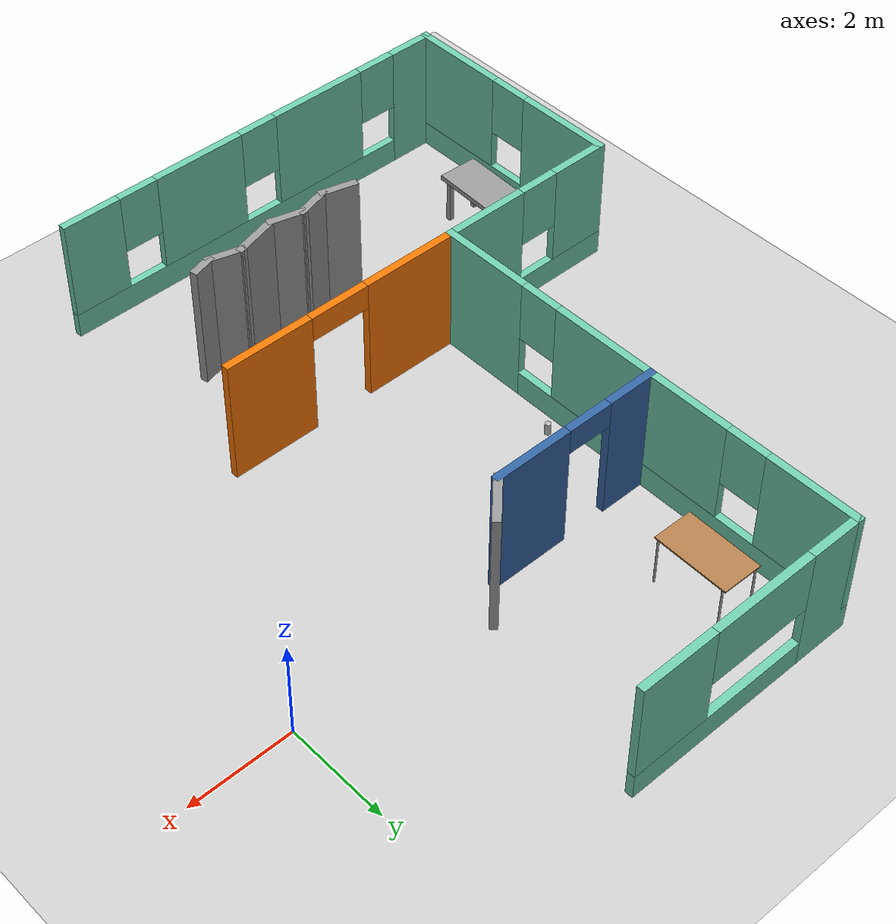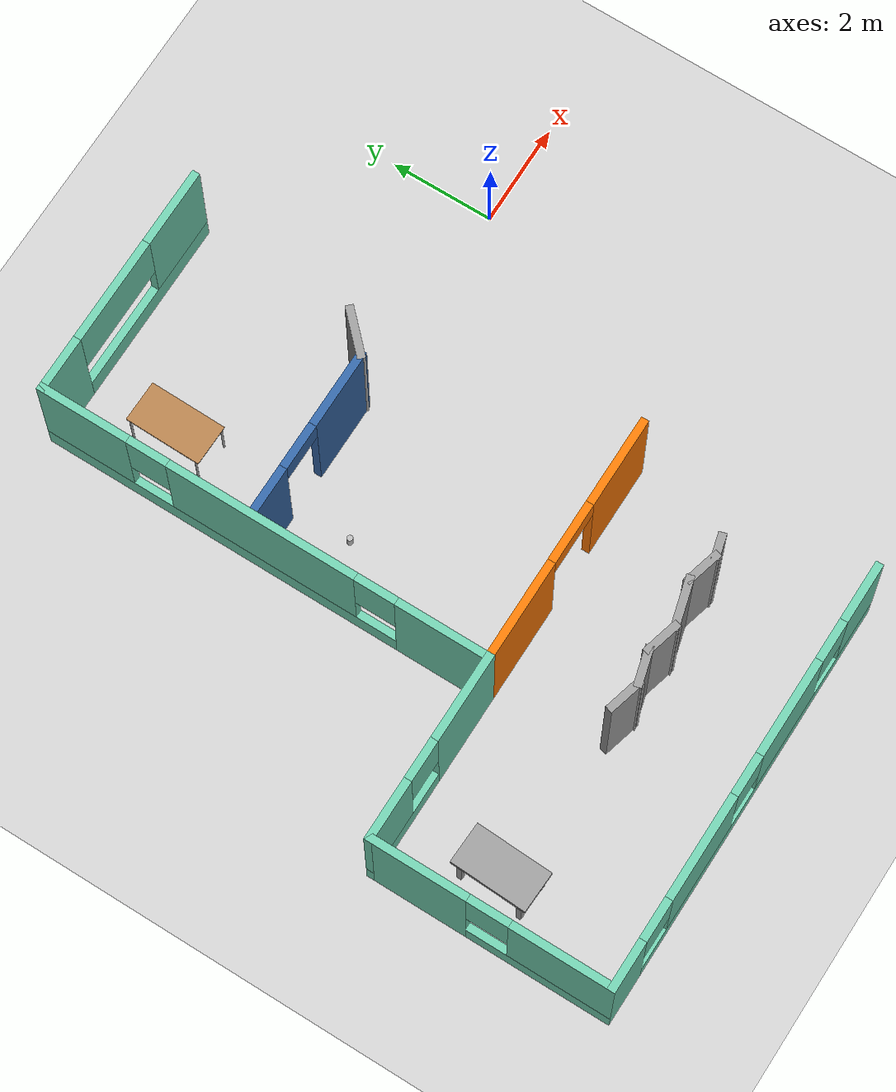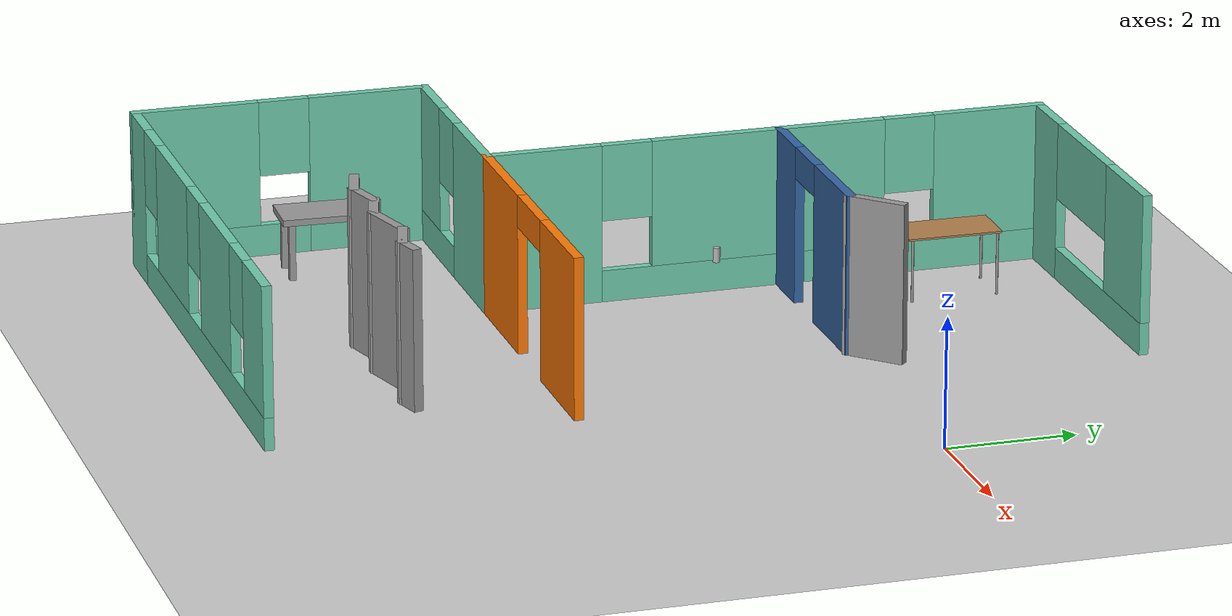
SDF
<sdf version="1.6">
 <world name="default">
  <model name="ground_plane">
   <static>1</static>
   <link name="link">
    <collision name="collision">
     <geometry><plane><normal>0 0 1</normal><size>100 100</size></plane></geometry>
     <surface>
      <contact><collide_bitmask>65535</collide_bitmask></contact>
      <friction><ode><mu>100</mu><mu2>50</mu2></ode></friction>
     </surface>
    </collision>
    <visual name="visual">
     <cast_shadows>0</cast_shadows>
     <geometry><plane><normal>0 0 1</normal><size>100 100</size></plane></geometry>
     <material>
      <script><uri>file://media/materials/scripts/gazebo.material</uri><name>Gazebo/Grey</name></script>
     </material>
    </visual>
   </link>
  </model>
  <model name="model">
   <pose>-1.34408 -2.0758 0 0 -0 0</pose>
   <link name="Wall_16">
    <pose>-3.78776 -2.63039 0 0 -0 3.14159</pose>
    <visual name="Wall_16_Visual_0">
     <pose>-1.61733 0 1.25 0 -0 0</pose>
     <geometry><box><size>1.76534 0.15 2.5</size></box></geometry>
     <material>
      <script><uri>file://media/materials/scripts/gazebo.material</uri><name>Gazebo/Grey</name></script>
      <ambient>0.996078 0.47451 0.0196078 1</ambient>
     </material>
     <meta><layer>0</layer></meta>
    </visual>
    <collision name="Wall_16_Collision_0">
     <geometry><box><size>1.76534 0.15 2.5</size></box></geometry>
     <pose>-1.61733 0 1.25 0 -0 0</pose>
    </collision>
    <visual name="Wall_16_Visual_1">
     <pose>1.48562 0 1.25 0 -0 0</pose>
     <geometry><box><size>2.02876 0.15 2.5</size></box></geometry>
     <material>
      <script><uri>file://media/materials/scripts/gazebo.material</uri><name>Gazebo/Grey</name></script>
      <ambient>0.996078 0.47451 0.0196078 1</ambient>
     </material>
     <meta><layer>0</layer></meta>
    </visual>
    <collision name="Wall_16_Collision_1">
     <geometry><box><size>2.02876 0.15 2.5</size></box></geometry>
     <pose>1.48562 0 1.25 0 -0 0</pose>
    </collision>
    <visual name="Wall_16_Visual_2">
     <pose>-0.131714 0 2.25 0 -0 0</pose>
     <geometry><box><size>1.2059 0.15 0.5</size></box></geometry>
     <material>
      <script><uri>file://media/materials/scripts/gazebo.material</uri><name>Gazebo/Grey</name></script>
      <ambient>0.996078 0.47451 0.0196078 1</ambient>
     </material>
     <meta><layer>0</layer></meta>
    </visual>
    <collision name="Wall_16_Collision_2">
     <geometry><box><size>1.2059 0.15 0.5</size></box></geometry>
     <pose>-0.131714 0 2.25 0 -0 0</pose>
    </collision>
   </link>
   <link name="Wall_17">
    <pose>-6.21276 1.79461 0 0 -0 1.5708</pose>
    <visual name="Wall_17_Visual_0">
     <pose>-3.56709 0 1.25 0 -0 0</pose>
     <geometry><box><size>1.86582 0.15 2.5</size></box></geometry>
     <material>
      <script><uri>file://media/materials/scripts/gazebo.material</uri><name>Gazebo/Grey</name></script>
      <ambient>0.435294 0.796078 0.67451 1</ambient>
     </material>
     <meta><layer>0</layer></meta>
    </visual>
    <collision name="Wall_17_Collision_0">
     <geometry><box><size>1.86582 0.15 2.5</size></box></geometry>
     <pose>-3.56709 0 1.25 0 -0 0</pose>
    </collision>
    <visual name="Wall_17_Visual_1">
     <pose>0.932909 0 0.25 0 -0 0</pose>
     <geometry><box><size>7.13418 0.15 0.5</size></box></geometry>
     <material>
      <script><uri>file://media/materials/scripts/gazebo.material</uri><name>Gazebo/Grey</name></script>
      <ambient>0.435294 0.796078 0.67451 1</ambient>
     </material>
     <meta><layer>0</layer></meta>
    </visual>
    <collision name="Wall_17_Collision_1">
     <geometry><box><size>7.13418 0.15 0.5</size></box></geometry>
     <pose>0.932909 0 0.25 0 -0 0</pose>
    </collision>
    <visual name="Wall_17_Visual_2">
     <pose>0.029496 0 1.5 0 -0 0</pose>
     <geometry><box><size>3.72735 0.15 2</size></box></geometry>
     <material>
      <script><uri>file://media/materials/scripts/gazebo.material</uri><name>Gazebo/Grey</name></script>
      <ambient>0.435294 0.796078 0.67451 1</ambient>
     </material>
     <meta><layer>0</layer></meta>
    </visual>
    <collision name="Wall_17_Collision_2">
     <geometry><box><size>3.72735 0.15 2</size></box></geometry>
     <pose>0.029496 0 1.5 0 -0 0</pose>
    </collision>
    <visual name="Wall_17_Visual_3">
     <pose>3.59659 0 1.5 0 -0 0</pose>
     <geometry><box><size>1.80683 0.15 2</size></box></geometry>
     <material>
      <script><uri>file://media/materials/scripts/gazebo.material</uri><name>Gazebo/Grey</name></script>
      <ambient>0.435294 0.796078 0.67451 1</ambient>
     </material>
     <meta><layer>0</layer></meta>
    </visual>
    <collision name="Wall_17_Collision_3">
     <geometry><box><size>1.80683 0.15 2</size></box></geometry>
     <pose>3.59659 0 1.5 0 -0 0</pose>
    </collision>
    <visual name="Wall_17_Visual_4">
     <pose>-2.23418 0 1.9 0 -0 0</pose>
     <geometry><box><size>0.8 0.15 1.2</size></box></geometry>
     <material>
      <script><uri>file://media/materials/scripts/gazebo.material</uri><name>Gazebo/Grey</name></script>
      <ambient>0.435294 0.796078 0.67451 1</ambient>
     </material>
     <meta><layer>0</layer></meta>
    </visual>
    <collision name="Wall_17_Collision_4">
     <geometry><box><size>0.8 0.15 1.2</size></box></geometry>
     <pose>-2.23418 0 1.9 0 -0 0</pose>
    </collision>
    <visual name="Wall_17_Visual_5">
     <pose>2.29317 0 1.9 0 -0 0</pose>
     <geometry><box><size>0.8 0.15 1.2</size></box></geometry>
     <material>
      <script><uri>file://media/materials/scripts/gazebo.material</uri><name>Gazebo/Grey</name></script>
      <ambient>0.435294 0.796078 0.67451 1</ambient>
     </material>
     <meta><layer>0</layer></meta>
    </visual>
    <collision name="Wall_17_Collision_5">
     <geometry><box><size>0.8 0.15 1.2</size></box></geometry>
     <pose>2.29317 0 1.9 0 -0 0</pose>
    </collision>
   </link>
   <link name="Wall_21">
    <pose>-4.53435 2.02213 0 0 -0 0</pose>
    <visual name="Wall_21_Visual_0">
     <pose>-1.22897 0 1.25 0 -0 0</pose>
     <geometry><box><size>1.04206 0.15 2.5</size></box></geometry>
     <material>
      <script><uri>file://media/materials/scripts/gazebo.material</uri><name>Gazebo/Grey</name></script>
      <ambient>0.203922 0.396078 0.643137 1</ambient>
     </material>
     <meta><layer>0</layer></meta>
    </visual>
    <collision name="Wall_21_Collision_0">
     <geometry><box><size>1.04206 0.15 2.5</size></box></geometry>
     <pose>-1.22897 0 1.25 0 -0 0</pose>
    </collision>
    <visual name="Wall_21_Visual_1">
     <pose>0.971028 0 1.25 0 -0 0</pose>
     <geometry><box><size>1.55794 0.15 2.5</size></box></geometry>
     <material>
      <script><uri>file://media/materials/scripts/gazebo.material</uri><name>Gazebo/Grey</name></script>
      <ambient>0.203922 0.396078 0.643137 1</ambient>
     </material>
     <meta><layer>0</layer></meta>
    </visual>
    <collision name="Wall_21_Collision_1">
     <geometry><box><size>1.55794 0.15 2.5</size></box></geometry>
     <pose>0.971028 0 1.25 0 -0 0</pose>
    </collision>
    <visual name="Wall_21_Visual_2">
     <pose>-0.257943 0 2.25 0 -0 0</pose>
     <geometry><box><size>0.9 0.15 0.5</size></box></geometry>
     <material>
      <script><uri>file://media/materials/scripts/gazebo.material</uri><name>Gazebo/Grey</name></script>
      <ambient>0.203922 0.396078 0.643137 1</ambient>
     </material>
     <meta><layer>0</layer></meta>
    </visual>
    <collision name="Wall_21_Collision_2">
     <geometry><box><size>0.9 0.15 0.5</size></box></geometry>
     <pose>-0.257943 0 2.25 0 -0 0</pose>
    </collision>
   </link>
   <link name="Wall_47">
    <pose>-8.01276 -2.63039 0 0 -0 3.14159</pose>
    <visual name="Wall_47_Visual_0">
     <pose>-1.00859 0 1.25 0 -0 0</pose>
     <geometry><box><size>1.73283 0.15 2.5</size></box></geometry>
     <material>
      <script><uri>file://media/materials/scripts/gazebo.material</uri><name>Gazebo/Grey</name></script>
      <ambient>0.435294 0.796078 0.67451 1</ambient>
     </material>
     <meta><layer>0</layer></meta>
    </visual>
    <collision name="Wall_47_Collision_0">
     <geometry><box><size>1.73283 0.15 2.5</size></box></geometry>
     <pose>-1.00859 0 1.25 0 -0 0</pose>
    </collision>
    <visual name="Wall_47_Visual_1">
     <pose>0.866413 0 0.25 0 -0 0</pose>
     <geometry><box><size>2.01717 0.15 0.5</size></box></geometry>
     <material>
      <script><uri>file://media/materials/scripts/gazebo.material</uri><name>Gazebo/Grey</name></script>
      <ambient>0.435294 0.796078 0.67451 1</ambient>
     </material>
     <meta><layer>0</layer></meta>
    </visual>
    <collision name="Wall_47_Collision_1">
     <geometry><box><size>2.01717 0.15 0.5</size></box></geometry>
     <pose>0.866413 0 0.25 0 -0 0</pose>
    </collision>
    <visual name="Wall_47_Visual_2">
     <pose>1.26641 0 1.5 0 -0 0</pose>
     <geometry><box><size>1.21717 0.15 2</size></box></geometry>
     <material>
      <script><uri>file://media/materials/scripts/gazebo.material</uri><name>Gazebo/Grey</name></script>
      <ambient>0.435294 0.796078 0.67451 1</ambient>
     </material>
     <meta><layer>0</layer></meta>
    </visual>
    <collision name="Wall_47_Collision_2">
     <geometry><box><size>1.21717 0.15 2</size></box></geometry>
     <pose>1.26641 0 1.5 0 -0 0</pose>
    </collision>
    <visual name="Wall_47_Visual_3">
     <pose>0.257826 0 1.9 0 -0 0</pose>
     <geometry><box><size>0.8 0.15 1.2</size></box></geometry>
     <material>
      <script><uri>file://media/materials/scripts/gazebo.material</uri><name>Gazebo/Grey</name></script>
      <ambient>0.435294 0.796078 0.67451 1</ambient>
     </material>
     <meta><layer>0</layer></meta>
    </visual>
    <collision name="Wall_47_Collision_3">
     <geometry><box><size>0.8 0.15 1.2</size></box></geometry>
     <pose>0.257826 0 1.9 0 -0 0</pose>
    </collision>
   </link>
   <link name="Wall_48">
    <pose>-9.81276 -4.93039 0 0 -0 -1.5708</pose>
    <visual name="Wall_48_Visual_0">
     <pose>-1.40172 0 1.25 0 -0 0</pose>
     <geometry><box><size>1.94656 0.15 2.5</size></box></geometry>
     <material>
      <script><uri>file://media/materials/scripts/gazebo.material</uri><name>Gazebo/Grey</name></script>
      <ambient>0.435294 0.796078 0.67451 1</ambient>
     </material>
     <meta><layer>0</layer></meta>
    </visual>
    <collision name="Wall_48_Collision_0">
     <geometry><box><size>1.94656 0.15 2.5</size></box></geometry>
     <pose>-1.40172 0 1.25 0 -0 0</pose>
    </collision>
    <visual name="Wall_48_Visual_1">
     <pose>0.973278 0 0.25 0 -0 0</pose>
     <geometry><box><size>2.80344 0.15 0.5</size></box></geometry>
     <material>
      <script><uri>file://media/materials/scripts/gazebo.material</uri><name>Gazebo/Grey</name></script>
      <ambient>0.435294 0.796078 0.67451 1</ambient>
     </material>
     <meta><layer>0</layer></meta>
    </visual>
    <collision name="Wall_48_Collision_1">
     <geometry><box><size>2.80344 0.15 0.5</size></box></geometry>
     <pose>0.973278 0 0.25 0 -0 0</pose>
    </collision>
    <visual name="Wall_48_Visual_2">
     <pose>1.37328 0 1.5 0 -0 0</pose>
     <geometry><box><size>2.00344 0.15 2</size></box></geometry>
     <material>
      <script><uri>file://media/materials/scripts/gazebo.material</uri><name>Gazebo/Grey</name></script>
      <ambient>0.435294 0.796078 0.67451 1</ambient>
     </material>
     <meta><layer>0</layer></meta>
    </visual>
    <collision name="Wall_48_Collision_2">
     <geometry><box><size>2.00344 0.15 2</size></box></geometry>
     <pose>1.37328 0 1.5 0 -0 0</pose>
    </collision>
    <visual name="Wall_48_Visual_3">
     <pose>-0.028444 0 1.9 0 -0 0</pose>
     <geometry><box><size>0.8 0.15 1.2</size></box></geometry>
     <material>
      <script><uri>file://media/materials/scripts/gazebo.material</uri><name>Gazebo/Grey</name></script>
      <ambient>0.435294 0.796078 0.67451 1</ambient>
     </material>
     <meta><layer>0</layer></meta>
    </visual>
    <collision name="Wall_48_Collision_3">
     <geometry><box><size>0.8 0.15 1.2</size></box></geometry>
     <pose>-0.028444 0 1.9 0 -0 0</pose>
    </collision>
   </link>
   <link name="Wall_53">
    <pose>-5.63776 -7.23039 0 0 -0 0</pose>
    <visual name="Wall_53_Visual_0">
     <pose>-3.75772 0 1.25 0 -0 0</pose>
     <geometry><box><size>0.984555 0.15 2.5</size></box></geometry>
     <material>
      <script><uri>file://media/materials/scripts/gazebo.material</uri><name>Gazebo/Grey</name></script>
      <ambient>0.435294 0.796078 0.67451 1</ambient>
     </material>
     <meta><layer>0</layer></meta>
    </visual>
    <collision name="Wall_53_Collision_0">
     <geometry><box><size>0.984555 0.15 2.5</size></box></geometry>
     <pose>-3.75772 0 1.25 0 -0 0</pose>
    </collision>
    <visual name="Wall_53_Visual_1">
     <pose>0.492277 0 0.25 0 -0 0</pose>
     <geometry><box><size>7.51544 0.15 0.5</size></box></geometry>
     <material>
      <script><uri>file://media/materials/scripts/gazebo.material</uri><name>Gazebo/Grey</name></script>
      <ambient>0.435294 0.796078 0.67451 1</ambient>
     </material>
     <meta><layer>0</layer></meta>
    </visual>
    <collision name="Wall_53_Collision_1">
     <geometry><box><size>7.51544 0.15 0.5</size></box></geometry>
     <pose>0.492277 0 0.25 0 -0 0</pose>
    </collision>
    <visual name="Wall_53_Visual_2">
     <pose>-1.44647 0 1.5 0 -0 0</pose>
     <geometry><box><size>2.03796 0.15 2</size></box></geometry>
     <material>
      <script><uri>file://media/materials/scripts/gazebo.material</uri><name>Gazebo/Grey</name></script>
      <ambient>0.435294 0.796078 0.67451 1</ambient>
     </material>
     <meta><layer>0</layer></meta>
    </visual>
    <collision name="Wall_53_Collision_2">
     <geometry><box><size>2.03796 0.15 2</size></box></geometry>
     <pose>-1.44647 0 1.5 0 -0 0</pose>
    </collision>
    <visual name="Wall_53_Visual_3">
     <pose>1.32171 0 1.5 0 -0 0</pose>
     <geometry><box><size>1.89839 0.15 2</size></box></geometry>
     <material>
      <script><uri>file://media/materials/scripts/gazebo.material</uri><name>Gazebo/Grey</name></script>
      <ambient>0.435294 0.796078 0.67451 1</ambient>
     </material>
     <meta><layer>0</layer></meta>
    </visual>
    <collision name="Wall_53_Collision_3">
     <geometry><box><size>1.89839 0.15 2</size></box></geometry>
     <pose>1.32171 0 1.5 0 -0 0</pose>
    </collision>
    <visual name="Wall_53_Visual_4">
     <pose>3.66045 0 1.5 0 -0 0</pose>
     <geometry><box><size>1.1791 0.15 2</size></box></geometry>
     <material>
      <script><uri>file://media/materials/scripts/gazebo.material</uri><name>Gazebo/Grey</name></script>
      <ambient>0.435294 0.796078 0.67451 1</ambient>
     </material>
     <meta><layer>0</layer></meta>
    </visual>
    <collision name="Wall_53_Collision_4">
     <geometry><box><size>1.1791 0.15 2</size></box></geometry>
     <pose>3.66045 0 1.5 0 -0 0</pose>
    </collision>
    <visual name="Wall_53_Visual_5">
     <pose>-2.86544 0 1.9 0 -0 0</pose>
     <geometry><box><size>0.8 0.15 1.2</size></box></geometry>
     <material>
      <script><uri>file://media/materials/scripts/gazebo.material</uri><name>Gazebo/Grey</name></script>
      <ambient>0.435294 0.796078 0.67451 1</ambient>
     </material>
     <meta><layer>0</layer></meta>
    </visual>
    <collision name="Wall_53_Collision_5">
     <geometry><box><size>0.8 0.15 1.2</size></box></geometry>
     <pose>-2.86544 0 1.9 0 -0 0</pose>
    </collision>
    <visual name="Wall_53_Visual_6">
     <pose>-0.027486 0 1.9 0 -0 0</pose>
     <geometry><box><size>0.8 0.15 1.2</size></box></geometry>
     <material>
      <script><uri>file://media/materials/scripts/gazebo.material</uri><name>Gazebo/Grey</name></script>
      <ambient>0.435294 0.796078 0.67451 1</ambient>
     </material>
     <meta><layer>0</layer></meta>
    </visual>
    <collision name="Wall_53_Collision_6">
     <geometry><box><size>0.8 0.15 1.2</size></box></geometry>
     <pose>-0.027486 0 1.9 0 -0 0</pose>
    </collision>
    <visual name="Wall_53_Visual_7">
     <pose>2.6709 0 1.9 0 -0 0</pose>
     <geometry><box><size>0.8 0.15 1.2</size></box></geometry>
     <material>
      <script><uri>file://media/materials/scripts/gazebo.material</uri><name>Gazebo/Grey</name></script>
      <ambient>0.435294 0.796078 0.67451 1</ambient>
     </material>
     <meta><layer>0</layer></meta>
    </visual>
    <collision name="Wall_53_Collision_7">
     <geometry><box><size>0.8 0.15 1.2</size></box></geometry>
     <pose>2.6709 0 1.9 0 -0 0</pose>
    </collision>
   </link>
   <link name="Wall_6">
    <pose>-3.91276 6.21961 0 0 -0 0</pose>
    <visual name="Wall_6_Visual_0">
     <pose>-1.81197 0 1.25 0 -0 0</pose>
     <geometry><box><size>1.12606 0.15 2.5</size></box></geometry>
     <material>
      <script><uri>file://media/materials/scripts/gazebo.material</uri><name>Gazebo/Grey</name></script>
      <ambient>0.435294 0.796078 0.67451 1</ambient>
     </material>
     <meta><layer>0</layer></meta>
    </visual>
    <collision name="Wall_6_Collision_0">
     <geometry><box><size>1.12606 0.15 2.5</size></box></geometry>
     <pose>-1.81197 0 1.25 0 -0 0</pose>
    </collision>
    <visual name="Wall_6_Visual_1">
     <pose>0.563031 0 0.25 0 -0 0</pose>
     <geometry><box><size>3.62394 0.15 0.5</size></box></geometry>
     <material>
      <script><uri>file://media/materials/scripts/gazebo.material</uri><name>Gazebo/Grey</name></script>
      <ambient>0.435294 0.796078 0.67451 1</ambient>
     </material>
     <meta><layer>0</layer></meta>
    </visual>
    <collision name="Wall_6_Collision_1">
     <geometry><box><size>3.62394 0.15 0.5</size></box></geometry>
     <pose>0.563031 0 0.25 0 -0 0</pose>
    </collision>
    <visual name="Wall_6_Visual_2">
     <pose>1.60543 0 1.5 0 -0 0</pose>
     <geometry><box><size>1.53915 0.15 2</size></box></geometry>
     <material>
      <script><uri>file://media/materials/scripts/gazebo.material</uri><name>Gazebo/Grey</name></script>
      <ambient>0.435294 0.796078 0.67451 1</ambient>
     </material>
     <meta><layer>0</layer></meta>
    </visual>
    <collision name="Wall_6_Collision_2">
     <geometry><box><size>1.53915 0.15 2</size></box></geometry>
     <pose>1.60543 0 1.5 0 -0 0</pose>
    </collision>
    <visual name="Wall_6_Visual_3">
     <pose>-0.206543 0 1.9 0 -0 0</pose>
     <geometry><box><size>2.08479 0.15 1.2</size></box></geometry>
     <material>
      <script><uri>file://media/materials/scripts/gazebo.material</uri><name>Gazebo/Grey</name></script>
      <ambient>0.435294 0.796078 0.67451 1</ambient>
     </material>
     <meta><layer>0</layer></meta>
    </visual>
    <collision name="Wall_6_Collision_3">
     <geometry><box><size>2.08479 0.15 1.2</size></box></geometry>
     <pose>-0.206543 0 1.9 0 -0 0</pose>
    </collision>
   </link>
   <link name="Wall_65">
    <collision name="Wall_65_Collision">
     <geometry><box><size>1 0.15 2.5</size></box></geometry>
     <pose>0 0 1.25 0 -0 0</pose>
    </collision>
    <visual name="Wall_65_Visual">
     <pose>0 0 1.25 0 -0 0</pose>
     <geometry><box><size>1 0.15 2.5</size></box></geometry>
     <material>
      <script><uri>file://media/materials/scripts/gazebo.material</uri><name>Gazebo/Grey</name></script>
      <ambient>0 0 0 1</ambient>
     </material>
     <meta><layer>0</layer></meta>
    </visual>
    <pose>-2.55882 2.32265 0 0 -0 0.785398</pose>
   </link>
   <link name="Wall_77">
    <collision name="Wall_77_Collision">
     <geometry><box><size>0.5 0.15 2.5</size></box></geometry>
     <pose>0 0 1.25 0 -0 0</pose>
    </collision>
    <visual name="Wall_77_Visual">
     <pose>0 0 1.25 0 -0 0</pose>
     <geometry><box><size>0.5 0.15 2.5</size></box></geometry>
     <material>
      <script><uri>file://media/materials/scripts/gazebo.material</uri><name>Gazebo/Grey</name></script>
      <ambient>0 0 0 1</ambient>
     </material>
     <meta><layer>0</layer></meta>
    </visual>
    <pose>-2.55654 -4.82634 0 0 -0 -2.87979</pose>
   </link>
   <link name="Wall_78">
    <collision name="Wall_78_Collision">
     <geometry><box><size>0.75 0.15 2.5</size></box></geometry>
     <pose>0 0 1.25 0 -0 0</pose>
    </collision>
    <visual name="Wall_78_Visual">
     <pose>0 0 1.25 0 -0 0</pose>
     <geometry><box><size>0.75 0.15 2.5</size></box></geometry>
     <material>
      <script><uri>file://media/materials/scripts/gazebo.material</uri><name>Gazebo/Grey</name></script>
      <ambient>0 0 0 1</ambient>
     </material>
     <meta><layer>0</layer></meta>
    </visual>
    <pose>-3.01536 -4.79399 0 0 -0 2.87979</pose>
   </link>
   <link name="Wall_79">
    <collision name="Wall_79_Collision">
     <geometry><box><size>1 0.15 2.5</size></box></geometry>
     <pose>0 0 1.25 0 -0 0</pose>
    </collision>
    <visual name="Wall_79_Visual">
     <pose>0 0 1.25 0 -0 0</pose>
     <geometry><box><size>1 0.15 2.5</size></box></geometry>
     <material>
      <script><uri>file://media/materials/scripts/gazebo.material</uri><name>Gazebo/Grey</name></script>
      <ambient>0 0 0 1</ambient>
     </material>
     <meta><layer>0</layer></meta>
    </visual>
    <pose>-3.71566 -4.82634 0 0 -0 -2.87979</pose>
   </link>
   <link name="Wall_80">
    <collision name="Wall_80_Collision">
     <geometry><box><size>0.75 0.15 2.5</size></box></geometry>
     <pose>0 0 1.25 0 -0 0</pose>
    </collision>
    <visual name="Wall_80_Visual">
     <pose>0 0 1.25 0 -0 0</pose>
     <geometry><box><size>0.75 0.15 2.5</size></box></geometry>
     <material>
      <script><uri>file://media/materials/scripts/gazebo.material</uri><name>Gazebo/Grey</name></script>
      <ambient>0 0 0 1</ambient>
     </material>
     <meta><layer>0</layer></meta>
    </visual>
    <pose>-4.41595 -4.85869 0 0 -0 2.87979</pose>
   </link>
   <link name="Wall_81">
    <collision name="Wall_81_Collision">
     <geometry><box><size>0.75 0.15 2.5</size></box></geometry>
     <pose>0 0 1.25 0 -0 0</pose>
    </collision>
    <visual name="Wall_81_Visual">
     <pose>0 0 1.25 0 -0 0</pose>
     <geometry><box><size>0.75 0.15 2.5</size></box></geometry>
     <material>
      <script><uri>file://media/materials/scripts/gazebo.material</uri><name>Gazebo/Grey</name></script>
      <ambient>0 0 0 1</ambient>
     </material>
     <meta><layer>0</layer></meta>
    </visual>
    <pose>-4.99551 -4.85869 0 0 -0 -2.87979</pose>
   </link>
   <link name="Wall_82">
    <collision name="Wall_82_Collision">
     <geometry><box><size>0.75 0.15 2.5</size></box></geometry>
     <pose>0 0 1.25 0 -0 0</pose>
    </collision>
    <visual name="Wall_82_Visual">
     <pose>0 0 1.25 0 -0 0</pose>
     <geometry><box><size>0.75 0.15 2.5</size></box></geometry>
     <material>
      <script><uri>file://media/materials/scripts/gazebo.material</uri><name>Gazebo/Grey</name></script>
      <ambient>0 0 0 1</ambient>
     </material>
     <meta><layer>0</layer></meta>
    </visual>
    <pose>-5.57506 -4.85869 0 0 -0 2.87979</pose>
   </link>
   <static>1</static>
  </model>
  <model name="model_2">
   <link name="link_0">
    <inertial>
     <mass>1</mass>
     <inertia>
      <ixx>0.166667</ixx>
      <ixy>0</ixy>
      <ixz>0</ixz>
      <iyy>0.166667</iyy>
      <iyz>0</iyz>
      <izz>0.166667</izz>
     </inertia>
    </inertial>
    <pose>0.07 0.14 0.4 0 -0 0</pose>
    <visual name="visual">
     <geometry><box><size>0.8 1.5 0.1</size></box></geometry>
     <material>
      <lighting>1</lighting>
      <script><uri>file://media/materials/scripts/gazebo.material</uri><name>Gazebo/Grey</name></script>
      <shader type="pixel"><normal_map>__default__</normal_map></shader>
      <ambient>0.3 0.3 0.3 1</ambient>
      <diffuse>0.7 0.7 0.7 1</diffuse>
      <specular>0.01 0.01 0.01 1</specular>
      <emissive>0 0 0 1</emissive>
     </material>
    </visual>
    <collision name="collision">
     <geometry><box><size>0.8 1.5 0.1</size></box></geometry>
     <surface>
      <friction>
       <ode><mu>1</mu><mu2>1</mu2><fdir1>0 0 0</fdir1><slip1>0</slip1><slip2>0</slip2></ode>
       <torsional>
        <coefficient>1</coefficient>
        <patch_radius>0</patch_radius>
        <surface_radius>0</surface_radius>
        <use_patch_radius>1</use_patch_radius>
        <ode><slip>0</slip></ode>
       </torsional>
      </friction>
      <bounce><restitution_coefficient>0</restitution_coefficient><threshold>1e+06</threshold></bounce>
      <contact>
       <collide_without_contact>0</collide_without_contact>
       <collide_without_contact_bitmask>1</collide_without_contact_bitmask>
       <collide_bitmask>1</collide_bitmask>
       <ode>
        <soft_cfm>0</soft_cfm>
        <soft_erp>0.2</soft_erp>
        <kp>1e+13</kp>
        <kd>1</kd>
        <max_vel>0.01</max_vel>
        <min_depth>0</min_depth>
       </ode>
       <bullet>
        <split_impulse>1</split_impulse>
        <split_impulse_penetration_threshold>-0.01</split_impulse_penetration_threshold>
        <soft_cfm>0</soft_cfm>
        <soft_erp>0.2</soft_erp>
        <kp>1e+13</kp>
        <kd>1</kd>
       </bullet>
      </contact>
     </surface>
    </collision>
   </link>
   <link name="link_1">
    <inertial>
     <mass>1</mass>
     <inertia>
      <ixx>0.166667</ixx>
      <ixy>0</ixy>
      <ixz>0</ixz>
      <iyy>0.166667</iyy>
      <iyz>0</iyz>
      <izz>0.166667</izz>
     </inertia>
    </inertial>
    <pose>-0.23 -0.46 -0.1 0 -0 0</pose>
    <visual name="visual">
     <geometry><box><size>0.1 0.1 0.9</size></box></geometry>
     <material>
      <lighting>1</lighting>
      <script><uri>file://media/materials/scripts/gazebo.material</uri><name>Gazebo/Grey</name></script>
      <shader type="pixel"><normal_map>__default__</normal_map></shader>
      <ambient>0.3 0.3 0.3 1</ambient>
      <diffuse>0.7 0.7 0.7 1</diffuse>
      <specular>0.01 0.01 0.01 1</specular>
      <emissive>0 0 0 1</emissive>
     </material>
    </visual>
    <collision name="collision">
     <geometry><box><size>0.1 0.1 0.9</size></box></geometry>
     <surface>
      <friction>
       <ode><mu>1</mu><mu2>1</mu2><fdir1>0 0 0</fdir1><slip1>0</slip1><slip2>0</slip2></ode>
       <torsional>
        <coefficient>1</coefficient>
        <patch_radius>0</patch_radius>
        <surface_radius>0</surface_radius>
        <use_patch_radius>1</use_patch_radius>
        <ode><slip>0</slip></ode>
       </torsional>
      </friction>
      <bounce><restitution_coefficient>0</restitution_coefficient><threshold>1e+06</threshold></bounce>
      <contact>
       <collide_without_contact>0</collide_without_contact>
       <collide_without_contact_bitmask>1</collide_without_contact_bitmask>
       <collide_bitmask>1</collide_bitmask>
       <ode>
        <soft_cfm>0</soft_cfm>
        <soft_erp>0.2</soft_erp>
        <kp>1e+13</kp>
        <kd>1</kd>
        <max_vel>0.01</max_vel>
        <min_depth>0</min_depth>
       </ode>
       <bullet>
        <split_impulse>1</split_impulse>
        <split_impulse_penetration_threshold>-0.01</split_impulse_penetration_threshold>
        <soft_cfm>0</soft_cfm>
        <soft_erp>0.2</soft_erp>
        <kp>1e+13</kp>
        <kd>1</kd>
       </bullet>
      </contact>
     </surface>
    </collision>
   </link>
   <link name="link_1_clone">
    <inertial>
     <mass>1</mass>
     <inertia>
      <ixx>0.166667</ixx>
      <ixy>0</ixy>
      <ixz>0</ixz>
      <iyy>0.166667</iyy>
      <iyz>0</iyz>
      <izz>0.166667</izz>
     </inertia>
    </inertial>
    <pose>-0.23 0.74 -0.1 0 -0 0</pose>
    <visual name="visual">
     <geometry><box><size>0.1 0.1 0.9</size></box></geometry>
     <material>
      <lighting>1</lighting>
      <script><uri>file://media/materials/scripts/gazebo.material</uri><name>Gazebo/Grey</name></script>
      <shader type="pixel"><normal_map>__default__</normal_map></shader>
      <ambient>0.3 0.3 0.3 1</ambient>
      <diffuse>0.7 0.7 0.7 1</diffuse>
      <specular>0.01 0.01 0.01 1</specular>
      <emissive>0 0 0 1</emissive>
     </material>
    </visual>
    <collision name="collision">
     <geometry><box><size>0.1 0.1 0.9</size></box></geometry>
     <surface>
      <friction>
       <ode><mu>1</mu><mu2>1</mu2><fdir1>0 0 0</fdir1><slip1>0</slip1><slip2>0</slip2></ode>
       <torsional>
        <coefficient>1</coefficient>
        <patch_radius>0</patch_radius>
        <surface_radius>0</surface_radius>
        <use_patch_radius>1</use_patch_radius>
        <ode><slip>0</slip></ode>
       </torsional>
      </friction>
      <bounce><restitution_coefficient>0</restitution_coefficient><threshold>1e+06</threshold></bounce>
      <contact>
       <collide_without_contact>0</collide_without_contact>
       <collide_without_contact_bitmask>1</collide_without_contact_bitmask>
       <collide_bitmask>1</collide_bitmask>
       <ode>
        <soft_cfm>0</soft_cfm>
        <soft_erp>0.2</soft_erp>
        <kp>1e+13</kp>
        <kd>1</kd>
        <max_vel>0.01</max_vel>
        <min_depth>0</min_depth>
       </ode>
       <bullet>
        <split_impulse>1</split_impulse>
        <split_impulse_penetration_threshold>-0.01</split_impulse_penetration_threshold>
        <soft_cfm>0</soft_cfm>
        <soft_erp>0.2</soft_erp>
        <kp>1e+13</kp>
        <kd>1</kd>
       </bullet>
      </contact>
     </surface>
    </collision>
   </link>
   <link name="link_1_clone_0">
    <inertial>
     <mass>1</mass>
     <inertia>
      <ixx>0.166667</ixx>
      <ixy>0</ixy>
      <ixz>0</ixz>
      <iyy>0.166667</iyy>
      <iyz>0</iyz>
      <izz>0.166667</izz>
     </inertia>
    </inertial>
    <pose>0.37 -0.46 -0.1 0 -0 0</pose>
    <visual name="visual">
     <geometry><box><size>0.1 0.1 0.9</size></box></geometry>
     <material>
      <lighting>1</lighting>
      <script><uri>file://media/materials/scripts/gazebo.material</uri><name>Gazebo/Grey</name></script>
      <shader type="pixel"><normal_map>__default__</normal_map></shader>
      <ambient>0.3 0.3 0.3 1</ambient>
      <diffuse>0.7 0.7 0.7 1</diffuse>
      <specular>0.01 0.01 0.01 1</specular>
      <emissive>0 0 0 1</emissive>
     </material>
    </visual>
    <collision name="collision">
     <geometry><box><size>0.1 0.1 0.9</size></box></geometry>
     <surface>
      <friction>
       <ode><mu>1</mu><mu2>1</mu2><fdir1>0 0 0</fdir1><slip1>0</slip1><slip2>0</slip2></ode>
       <torsional>
        <coefficient>1</coefficient>
        <patch_radius>0</patch_radius>
        <surface_radius>0</surface_radius>
        <use_patch_radius>1</use_patch_radius>
        <ode><slip>0</slip></ode>
       </torsional>
      </friction>
      <bounce><restitution_coefficient>0</restitution_coefficient><threshold>1e+06</threshold></bounce>
      <contact>
       <collide_without_contact>0</collide_without_contact>
       <collide_without_contact_bitmask>1</collide_without_contact_bitmask>
       <collide_bitmask>1</collide_bitmask>
       <ode>
        <soft_cfm>0</soft_cfm>
        <soft_erp>0.2</soft_erp>
        <kp>1e+13</kp>
        <kd>1</kd>
        <max_vel>0.01</max_vel>
        <min_depth>0</min_depth>
       </ode>
       <bullet>
        <split_impulse>1</split_impulse>
        <split_impulse_penetration_threshold>-0.01</split_impulse_penetration_threshold>
        <soft_cfm>0</soft_cfm>
        <soft_erp>0.2</soft_erp>
        <kp>1e+13</kp>
        <kd>1</kd>
       </bullet>
      </contact>
     </surface>
    </collision>
   </link>
   <link name="link_1_clone_1">
    <inertial>
     <mass>1</mass>
     <inertia>
      <ixx>0.166667</ixx>
      <ixy>0</ixy>
      <ixz>0</ixz>
      <iyy>0.166667</iyy>
      <iyz>0</iyz>
      <izz>0.166667</izz>
     </inertia>
    </inertial>
    <pose>0.37 0.74 -0.1 0 -0 0</pose>
    <visual name="visual">
     <geometry><box><size>0.1 0.1 0.9</size></box></geometry>
     <material>
      <lighting>1</lighting>
      <script><uri>file://media/materials/scripts/gazebo.material</uri><name>Gazebo/Grey</name></script>
      <shader type="pixel"><normal_map>__default__</normal_map></shader>
      <ambient>0.3 0.3 0.3 1</ambient>
      <diffuse>0.7 0.7 0.7 1</diffuse>
      <specular>0.01 0.01 0.01 1</specular>
      <emissive>0 0 0 1</emissive>
     </material>
    </visual>
    <collision name="collision">
     <geometry><box><size>0.1 0.1 0.9</size></box></geometry>
     <surface>
      <friction>
       <ode><mu>1</mu><mu2>1</mu2><fdir1>0 0 0</fdir1><slip1>0</slip1><slip2>0</slip2></ode>
       <torsional>
        <coefficient>1</coefficient>
        <patch_radius>0</patch_radius>
        <surface_radius>0</surface_radius>
        <use_patch_radius>1</use_patch_radius>
        <ode><slip>0</slip></ode>
       </torsional>
      </friction>
      <bounce><restitution_coefficient>0</restitution_coefficient><threshold>1e+06</threshold></bounce>
      <contact>
       <collide_without_contact>0</collide_without_contact>
       <collide_without_contact_bitmask>1</collide_without_contact_bitmask>
       <collide_bitmask>1</collide_bitmask>
       <ode>
        <soft_cfm>0</soft_cfm>
        <soft_erp>0.2</soft_erp>
        <kp>1e+13</kp>
        <kd>1</kd>
        <max_vel>0.01</max_vel>
        <min_depth>0</min_depth>
       </ode>
       <bullet>
        <split_impulse>1</split_impulse>
        <split_impulse_penetration_threshold>-0.01</split_impulse_penetration_threshold>
        <soft_cfm>0</soft_cfm>
        <soft_erp>0.2</soft_erp>
        <kp>1e+13</kp>
        <kd>1</kd>
       </bullet>
      </contact>
     </surface>
    </collision>
   </link>
   <joint name="link_0_JOINT_0" type="fixed">
    <parent>link_0</parent>
    <child>link_1</child>
    <physics>
     <ode><limit><cfm>0</cfm><erp>0.2</erp></limit><suspension><cfm>0</cfm><erp>0.2</erp></suspension></ode>
    </physics>
   </joint>
   <joint name="link_0_JOINT_1" type="fixed">
    <parent>link_0</parent>
    <child>link_1_clone_1</child>
    <physics>
     <ode><limit><cfm>0</cfm><erp>0.2</erp></limit><suspension><cfm>0</cfm><erp>0.2</erp></suspension></ode>
    </physics>
   </joint>
   <joint name="link_0_JOINT_2" type="fixed">
    <parent>link_0</parent>
    <child>link_1_clone_0</child>
    <physics>
     <ode><limit><cfm>0</cfm><erp>0.2</erp></limit><suspension><cfm>0</cfm><erp>0.2</erp></suspension></ode>
    </physics>
   </joint>
   <joint name="link_0_JOINT_3" type="revolute">
    <parent>link_0</parent>
    <child>link_1_clone</child>
    <axis>
     <xyz>1 0 0</xyz>
     <use_parent_model_frame>0</use_parent_model_frame>
     <limit>
      <lower>-1.79769e+308</lower>
      <upper>1.79769e+308</upper>
      <effort>-1</effort>
      <velocity>-1</velocity>
     </limit>
     <dynamics>
      <spring_reference>0</spring_reference>
      <spring_stiffness>0</spring_stiffness>
      <damping>0</damping>
     </dynamics>
    </axis>
    <physics>
     <ode><limit><cfm>0</cfm><erp>0.2</erp></limit><suspension><cfm>0</cfm><erp>0.2</erp></suspension></ode>
    </physics>
   </joint>
   <static>0</static>
   <pose>-10.1993 -6.71211 0.55 -1e-06 -2e-06 -0.042175</pose>
  </model>
  <model name="table_clone_0">
   <static>1</static>
   <link name="link">
    <collision name="surface">
     <pose>0 0 1 0 -0 0</pose>
     <geometry><box><size>1.5 0.8 0.03</size></box></geometry>
     <surface><friction><ode><mu>0.6</mu><mu2>0.6</mu2></ode></friction></surface>
    </collision>
    <visual name="visual1">
     <pose>0 0 1 0 -0 0</pose>
     <geometry><box><size>1.5 0.8 0.03</size></box></geometry>
     <material>
      <script><uri>file://media/materials/scripts/gazebo.material</uri><name>Gazebo/Wood</name></script>
     </material>
    </visual>
    <collision name="front_left_leg">
     <pose>0.68 0.38 0.5 0 -0 0</pose>
     <geometry><cylinder><radius>0.02</radius><length>1</length></cylinder></geometry>
    </collision>
    <visual name="front_left_leg">
     <pose>0.68 0.38 0.5 0 -0 0</pose>
     <geometry><cylinder><radius>0.02</radius><length>1</length></cylinder></geometry>
     <material>
      <script><uri>file://media/materials/scripts/gazebo.material</uri><name>Gazebo/Grey</name></script>
     </material>
    </visual>
    <collision name="front_right_leg">
     <pose>0.68 -0.38 0.5 0 -0 0</pose>
     <geometry><cylinder><radius>0.02</radius><length>1</length></cylinder></geometry>
    </collision>
    <visual name="front_right_leg">
     <pose>0.68 -0.38 0.5 0 -0 0</pose>
     <geometry><cylinder><radius>0.02</radius><length>1</length></cylinder></geometry>
     <material>
      <script><uri>file://media/materials/scripts/gazebo.material</uri><name>Gazebo/Grey</name></script>
     </material>
    </visual>
    <collision name="back_right_leg">
     <pose>-0.68 -0.38 0.5 0 -0 0</pose>
     <geometry><cylinder><radius>0.02</radius><length>1</length></cylinder></geometry>
    </collision>
    <visual name="back_right_leg">
     <pose>-0.68 -0.38 0.5 0 -0 0</pose>
     <geometry><cylinder><radius>0.02</radius><length>1</length></cylinder></geometry>
     <material>
      <script><uri>file://media/materials/scripts/gazebo.material</uri><name>Gazebo/Grey</name></script>
     </material>
    </visual>
    <collision name="back_left_leg">
     <pose>-0.68 0.38 0.5 0 -0 0</pose>
     <geometry><cylinder><radius>0.02</radius><length>1</length></cylinder></geometry>
    </collision>
    <visual name="back_left_leg">
     <pose>-0.68 0.38 0.5 0 -0 0</pose>
     <geometry><cylinder><radius>0.02</radius><length>1</length></cylinder></geometry>
     <material>
      <script><uri>file://media/materials/scripts/gazebo.material</uri><name>Gazebo/Grey</name></script>
     </material>
    </visual>
   </link>
   <pose>-6.48548 2.29792 0 0 -0 1.5552</pose>
  </model>
  <model name="beer">
   <link name="link">
    <pose>0 0 0.115 0 -0 0</pose>
    <inertial>
     <mass>0.39</mass>
     <inertia><ixx>0.00058</ixx><ixy>0</ixy><ixz>0</ixz><iyy>0.00058</iyy><iyz>0</iyz><izz>0.00019</izz></inertia>
    </inertial>
    <collision name="collision">
     <geometry><cylinder><radius>0.055</radius><length>0.23</length></cylinder></geometry>
    </collision>
    <visual name="visual">
     <geometry><cylinder><radius>0.055</radius><length>0.23</length></cylinder></geometry>
     <material>
      <script>
       <uri>model://beer/materials/scripts</uri>
       <uri>model://beer/materials/textures</uri>
       <name>Beer/Diffuse</name>
      </script>
     </material>
    </visual>
   </link>
   <pose>-6.63486 -1.35781 0.775001 1.8e-05 1.4e-05 0.001493</pose>
  </model>
 </world>
</sdf>
